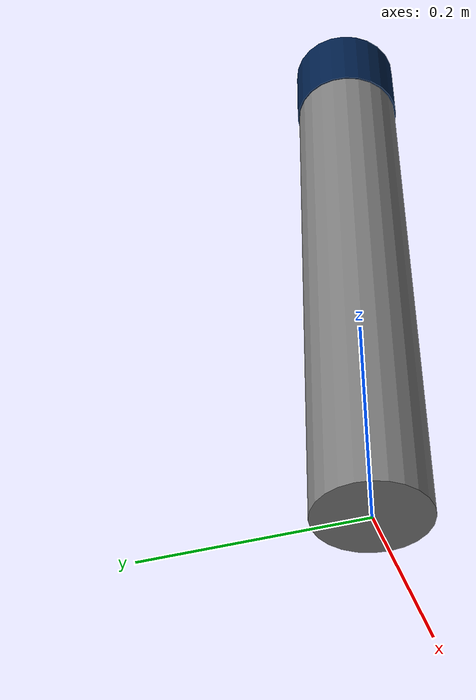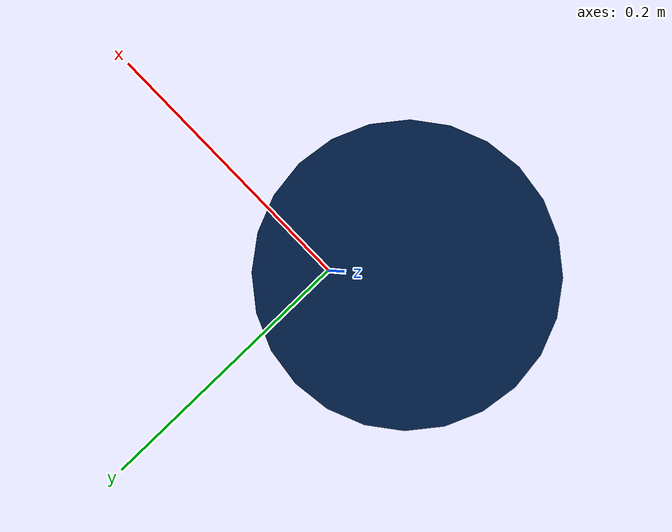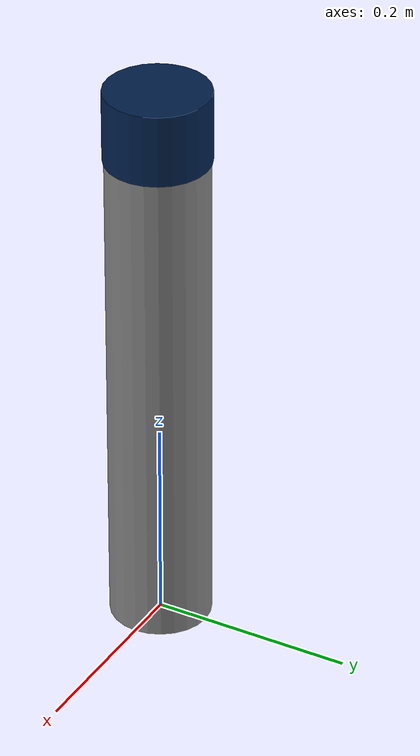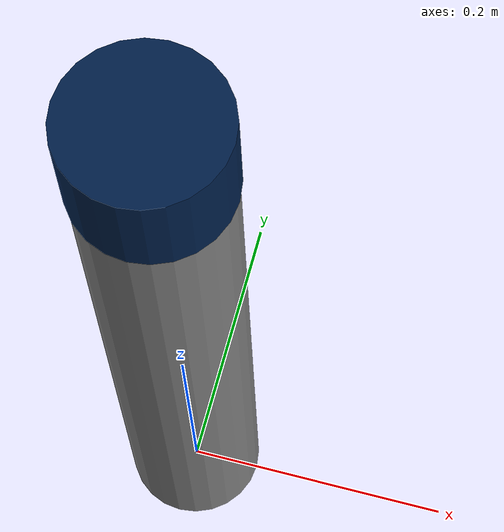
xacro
<?xml version='1.0'?>

<robot name="lidar_test" xmlns:xacro="http://www.ros.org/wiki/xacro">
    <xacro:property name="robot_name" value="lidar_test" />

    <!-- Import sensor plugin -->
    <gazebo>
        <plugin filename="ignition-gazebo-sensors-system"
            name="gz::sim::systems::Sensors">
            <render_engine>ogre2</render_engine>
        </plugin>
    </gazebo>

    <!-- Make Base Link -->
    <link name="base_link">
        <origin rpy="0 0 0" xyz="0 0 0"/>
    </link>

	<!-- Make stand link -->
    <link name="lidar_stand">
        <inertial>
            <origin xyz="0.0 0.0 0.0" rpy="0.0 1.57079632679 0.0"/>
            <mass value="1.0"/>
            <inertia ixx="0.0416666666667" ixy="0.0" ixz="0.0" iyy="0.0416666666667" iyz="0.0" izz="0.0416666666667"/>
        </inertial>
        <visual name="lidar_stand_visual">
            <origin xyz="0.0 0.0 0.0" rpy="0.0 0.0 0.0"/>
            <geometry>
                <cylinder radius="0.05" length="0.5"/>
            </geometry>
            <material name="lidar_stand">
                <color rgba="0.5 0.5 0.5 1.0"/>
            </material>
        </visual>
        <collision>
            <origin xyz="0.0 0.0 0.0" rpy="0.0 0.0 0.0"/>
            <geometry>
                <cylinder radius="0.05" length="0.5"/>
            </geometry>
        </collision>
    </link>

    <!-- Join the stand to the baselink -->
    <joint name="base_stand_joint" type="fixed">
        <origin xyz="0.0 0.0 0.25" rpy="0.0 0.0 0.0"/>
        <parent link="base_link"/>
        <child link="lidar_stand"/>
    </joint>

    <!-- Make the lidar model -->
    <link name="lidar">
        <inertial>
            <origin xyz="0.0 0.0 0.0" rpy="0.0 0.0 0.0"/>
            <mass value="0.0"/>
            <inertia ixx="0.0" ixy="0.0" ixz="0.0" iyy="0.0" iyz="0.0" izz="0.0"/>
        </inertial>
        <visual name="lidar_visual">
            <origin xyz="0.0 0.0 0.0" rpy="0.0 0.0 0.0"/>
            <geometry>
                <cylinder radius=".0515" length="0.0717"/>
            </geometry>
            <material name="lidar">
                <color rgba="0.0 0.121568627451 0.294117647059 1.0"/>
            </material>
        </visual>
        <collision>
            <origin xyz="0.0 0.0 0.0" rpy="0.0 0.0 0.0"/>
            <geometry>
                <cylinder radius="0.035" length="0.015"/>
            </geometry>
        </collision>
    </link>

    <!-- Attach the lidar to the stand -->
    <joint name="stand_lidar_joint" type="fixed">
        <origin xyz="0.0 0.0 0.28585" rpy="0.0 0.0 0.0"/>
        <parent link="lidar_stand"/>
        <child link="lidar"/>
    </joint>

    <!-- Attach the sensor itself to the model -->
    <gazebo>
        <frame name="lidar_frame" attached_to='lidar'>
            <pose>0 0 0 0 0 0</pose>
        </frame>
    </gazebo>

    <gazebo reference="lidar">
        <sensor name="lidar" type='gpu_lidar'>
            <pose relative_to='lidar_frame'>0 0 0 0 0 0</pose>
            <topic>lidar</topic>
            <update_rate>10</update_rate>
            <ray>
                <scan>
                    <horizontal>
                        <samples>640</samples>
                        <resolution>1</resolution>
                        <min_angle>-3.14159265359</min_angle>
                        <max_angle>3.14159265359</max_angle>
                    </horizontal>
                    <vertical>
                        <samples>16</samples>
                        <resolution>1</resolution>
                        <min_angle>-0.349065850399</min_angle>
                        <max_angle>0.349065850399</max_angle>
                    </vertical>
                </scan>
                <range>
                    <min>0.08</min>
                    <max>10.0</max>
                    <resolution>0.01</resolution>
                </range>
            </ray>
            <alwaysOn>true</alwaysOn>
            <visualize>true</visualize>
            <enable_metrics>true</enable_metrics>
        </sensor>
    </gazebo>

</robot>
